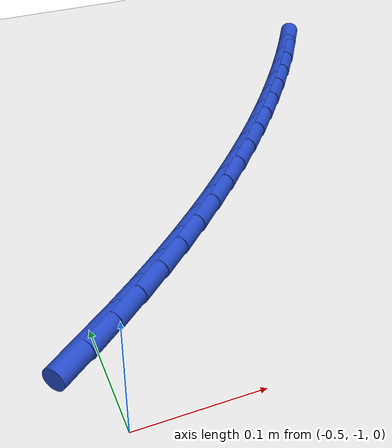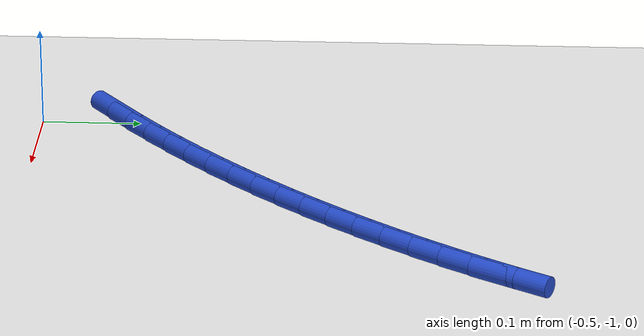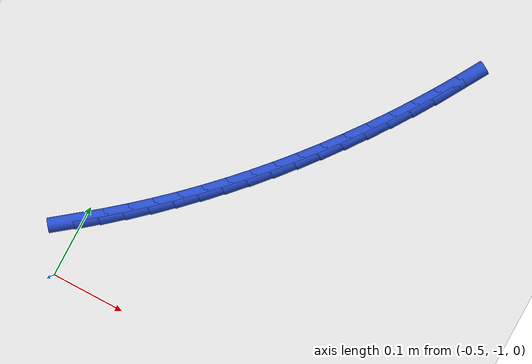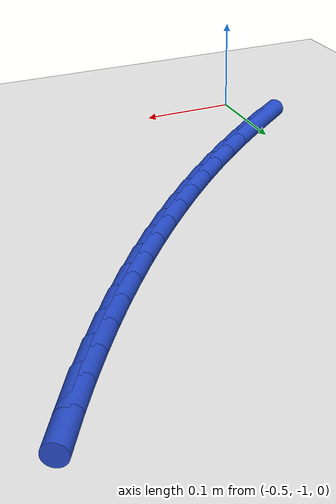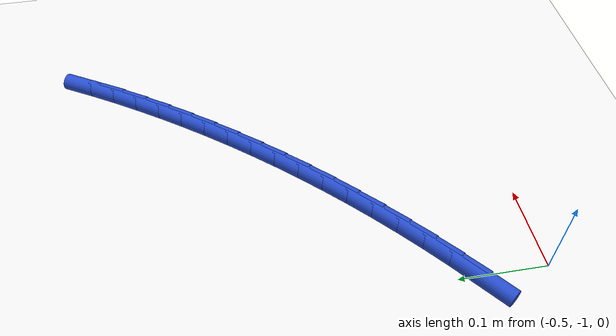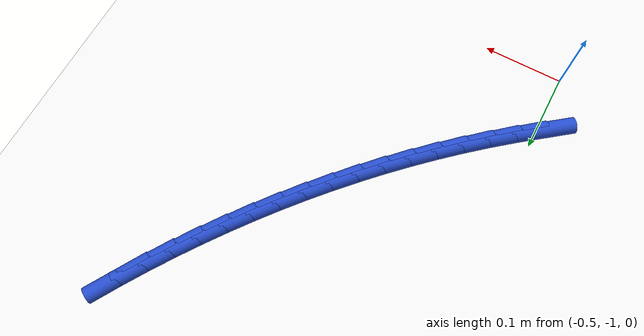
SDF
<sdf version="1.6">
 <world name="default">
  <model name="ground_plane">
   <static>1</static>
   <link name="link">
    <collision name="collision">
     <geometry><plane><normal>0 0 1</normal><size>100 100</size></plane></geometry>
     <surface><friction><ode><mu>100</mu><mu2>50</mu2></ode></friction></surface>
    </collision>
    <visual name="visual">
     <cast_shadows>0</cast_shadows>
     <geometry><plane><normal>0 0 1</normal><size>100 100</size></plane></geometry>
     <material>
      <script><uri>file://media/materials/scripts/gazebo.material</uri><name>Gazebo/WhiteGlow</name></script>
     </material>
    </visual>
   </link>
  </model>
  <model name="line">
   <link name="link_167">
    <pose>-0.5055592169184208 -0.921866363437835 0.01 0 1.57 0.6614118675697273</pose>
    <collision name="collision">
     <geometry><cylinder><radius>0.01</radius><length>0.08</length></cylinder></geometry>
    </collision>
    <visual name="visual">
     <material>
      <script><name>Gazebo/Blue</name><uri>file://media/materials/scripts/gazebo.material</uri></script>
     </material>
     <geometry><cylinder><radius>0.01</radius><length>0.08</length></cylinder></geometry>
    </visual>
   </link>
   <link name="link_168">
    <pose>-0.47920893623583205 -0.9013561037308955 0.01 0 1.57 0.6884647782592369</pose>
    <collision name="collision">
     <geometry><cylinder><radius>0.01</radius><length>0.08</length></cylinder></geometry>
    </collision>
    <visual name="visual">
     <material>
      <script><name>Gazebo/Blue</name><uri>file://media/materials/scripts/gazebo.material</uri></script>
     </material>
     <geometry><cylinder><radius>0.01</radius><length>0.08</length></cylinder></geometry>
    </visual>
   </link>
   <link name="link_169">
    <pose>-0.45345358844081324 -0.88016567535335 0.01 0 1.57 0.7128190054942779</pose>
    <collision name="collision">
     <geometry><cylinder><radius>0.01</radius><length>0.08</length></cylinder></geometry>
    </collision>
    <visual name="visual">
     <material>
      <script><name>Gazebo/Blue</name><uri>file://media/materials/scripts/gazebo.material</uri></script>
     </material>
     <geometry><cylinder><radius>0.01</radius><length>0.08</length></cylinder></geometry>
    </visual>
   </link>
   <link name="link_170">
    <pose>-0.4282928475939204 -0.8584156681470703 0.01 0 1.57 0.7363329613667219</pose>
    <collision name="collision">
     <geometry><cylinder><radius>0.01</radius><length>0.08</length></cylinder></geometry>
    </collision>
    <visual name="visual">
     <material>
      <script><name>Gazebo/Blue</name><uri>file://media/materials/scripts/gazebo.material</uri></script>
     </material>
     <geometry><cylinder><radius>0.01</radius><length>0.08</length></cylinder></geometry>
    </visual>
   </link>
   <link name="link_171">
    <pose>-0.40372509819001784 -0.8361477653238554 0.01 0 1.57 0.7597679487725654</pose>
    <collision name="collision">
     <geometry><cylinder><radius>0.01</radius><length>0.08</length></cylinder></geometry>
    </collision>
    <visual name="visual">
     <material>
      <script><name>Gazebo/Blue</name><uri>file://media/materials/scripts/gazebo.material</uri></script>
     </material>
     <geometry><cylinder><radius>0.01</radius><length>0.08</length></cylinder></geometry>
    </visual>
   </link>
   <link name="link_172">
    <pose>-0.37974816567164077 -0.8133694425048392 0.01 0 1.57 0.783107875614814</pose>
    <collision name="collision">
     <geometry><cylinder><radius>0.01</radius><length>0.08</length></cylinder></geometry>
    </collision>
    <visual name="visual">
     <material>
      <script><name>Gazebo/Blue</name><uri>file://media/materials/scripts/gazebo.material</uri></script>
     </material>
     <geometry><cylinder><radius>0.01</radius><length>0.08</length></cylinder></geometry>
    </visual>
   </link>
   <link name="link_173">
    <pose>-0.3563598732255558 -0.7900880372840294 0.01 0 1.57 0.8063341811886936</pose>
    <collision name="collision">
     <geometry><cylinder><radius>0.01</radius><length>0.08</length></cylinder></geometry>
    </collision>
    <visual name="visual">
     <material>
      <script><name>Gazebo/Blue</name><uri>file://media/materials/scripts/gazebo.material</uri></script>
     </material>
     <geometry><cylinder><radius>0.01</radius><length>0.08</length></cylinder></geometry>
    </visual>
   </link>
   <link name="link_174">
    <pose>-0.3335580440385304 -0.7663108872554335 0.01 0 1.57 0.8294290224466825</pose>
    <collision name="collision">
     <geometry><cylinder><radius>0.01</radius><length>0.08</length></cylinder></geometry>
    </collision>
    <visual name="visual">
     <material>
      <script><name>Gazebo/Blue</name><uri>file://media/materials/scripts/gazebo.material</uri></script>
     </material>
     <geometry><cylinder><radius>0.01</radius><length>0.08</length></cylinder></geometry>
    </visual>
   </link>
   <link name="link_175">
    <pose>-0.311340501297331 -0.742045330013059 0.01 0 1.57 0.8523753556492925</pose>
    <collision name="collision">
     <geometry><cylinder><radius>0.01</radius><length>0.08</length></cylinder></geometry>
    </collision>
    <visual name="visual">
     <material>
      <script><name>Gazebo/Blue</name><uri>file://media/materials/scripts/gazebo.material</uri></script>
     </material>
     <geometry><cylinder><radius>0.01</radius><length>0.08</length></cylinder></geometry>
    </visual>
   </link>
   <link name="link_176">
    <pose>-0.2897050681887251 -0.717298703150913 0.01 0 1.57 0.875157007946516</pose>
    <collision name="collision">
     <geometry><cylinder><radius>0.01</radius><length>0.08</length></cylinder></geometry>
    </collision>
    <visual name="visual">
     <material>
      <script><name>Gazebo/Blue</name><uri>file://media/materials/scripts/gazebo.material</uri></script>
     </material>
     <geometry><cylinder><radius>0.01</radius><length>0.08</length></cylinder></geometry>
    </visual>
   </link>
   <link name="link_177">
    <pose>-0.2686495678994795 -0.6920783442630039 0.01 0 1.57 0.8977587383618768</pose>
    <collision name="collision">
     <geometry><cylinder><radius>0.01</radius><length>0.08</length></cylinder></geometry>
    </collision>
    <visual name="visual">
     <material>
      <script><name>Gazebo/Blue</name><uri>file://media/materials/scripts/gazebo.material</uri></script>
     </material>
     <geometry><cylinder><radius>0.01</radius><length>0.08</length></cylinder></geometry>
    </visual>
   </link>
   <link name="link_178">
    <pose>-0.24817182361636125 -0.6663915909433384 0.01 0 1.57 0.9201662878776989</pose>
    <collision name="collision">
     <geometry><cylinder><radius>0.01</radius><length>0.08</length></cylinder></geometry>
    </collision>
    <visual name="visual">
     <material>
      <script><name>Gazebo/Blue</name><uri>file://media/materials/scripts/gazebo.material</uri></script>
     </material>
     <geometry><cylinder><radius>0.01</radius><length>0.08</length></cylinder></geometry>
    </visual>
   </link>
   <link name="link_179">
    <pose>-0.22826965852613726 -0.6402457807859242 0.01 0 1.57 0.9423664185414269</pose>
    <collision name="collision">
     <geometry><cylinder><radius>0.01</radius><length>0.08</length></cylinder></geometry>
    </collision>
    <visual name="visual">
     <material>
      <script><name>Gazebo/Blue</name><uri>file://media/materials/scripts/gazebo.material</uri></script>
     </material>
     <geometry><cylinder><radius>0.01</radius><length>0.08</length></cylinder></geometry>
    </visual>
   </link>
   <link name="link_180">
    <pose>-0.20894089581557462 -0.613648251384769 0.01 0 1.57 0.9643469628295808</pose>
    <collision name="collision">
     <geometry><cylinder><radius>0.01</radius><length>0.08</length></cylinder></geometry>
    </collision>
    <visual name="visual">
     <material>
      <script><name>Gazebo/Blue</name><uri>file://media/materials/scripts/gazebo.material</uri></script>
     </material>
     <geometry><cylinder><radius>0.01</radius><length>0.08</length></cylinder></geometry>
    </visual>
   </link>
   <link name="link_181">
    <pose>-0.19018335947776613 -0.5866063402773566 0.01 0 1.57 0.9863962331301459</pose>
    <collision name="collision">
     <geometry><cylinder><radius>0.01</radius><length>0.08</length></cylinder></geometry>
    </collision>
    <visual name="visual">
     <material>
      <script><name>Gazebo/Blue</name><uri>file://media/materials/scripts/gazebo.material</uri></script>
     </material>
     <geometry><cylinder><radius>0.01</radius><length>0.08</length></cylinder></geometry>
    </visual>
   </link>
   <link name="link_182">
    <pose>-0.17200617990162193 -0.5591265924235673 0.01 0 1.57 1.0095782718145676</pose>
    <collision name="collision">
     <geometry><cylinder><radius>0.01</radius><length>0.08</length></cylinder></geometry>
    </collision>
    <visual name="visual">
     <material>
      <script><name>Gazebo/Blue</name><uri>file://media/materials/scripts/gazebo.material</uri></script>
     </material>
     <geometry><cylinder><radius>0.01</radius><length>0.08</length></cylinder></geometry>
    </visual>
   </link>
   <link name="link_183">
    <pose>-0.15445821914917135 -0.5312127675956053 0.01 0 1.57 1.0341648870864648</pose>
    <collision name="collision">
     <geometry><cylinder><radius>0.01</radius><length>0.08</length></cylinder></geometry>
    </collision>
    <visual name="visual">
     <material>
      <script><name>Gazebo/Blue</name><uri>file://media/materials/scripts/gazebo.material</uri></script>
     </material>
     <geometry><cylinder><radius>0.01</radius><length>0.08</length></cylinder></geometry>
    </visual>
   </link>
  </model>
 </world>
</sdf>
